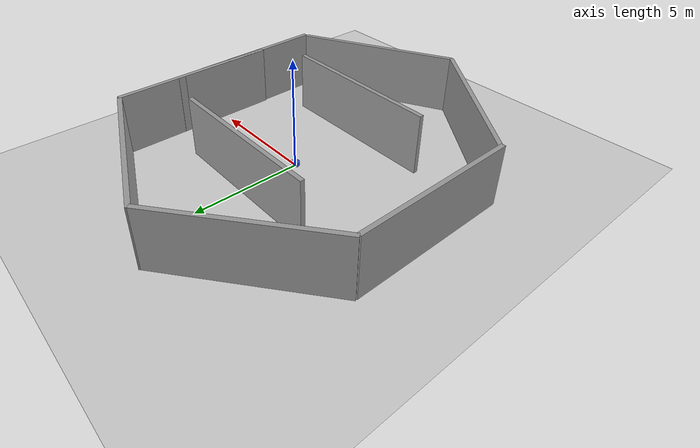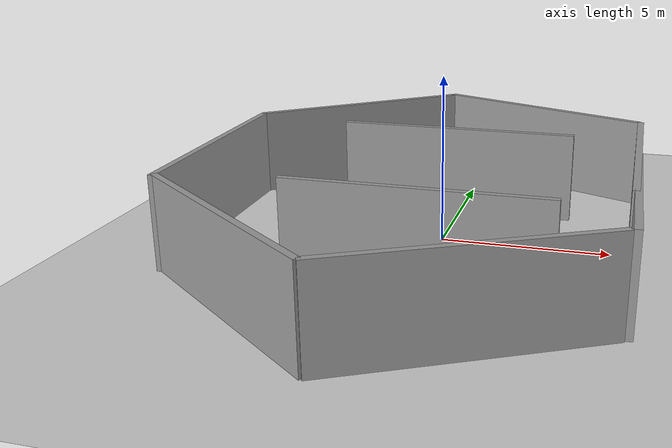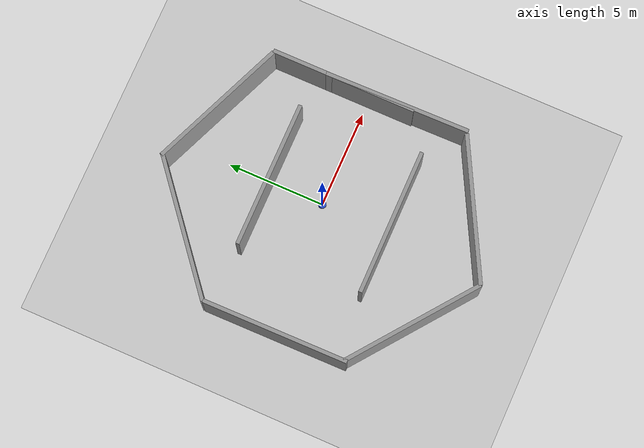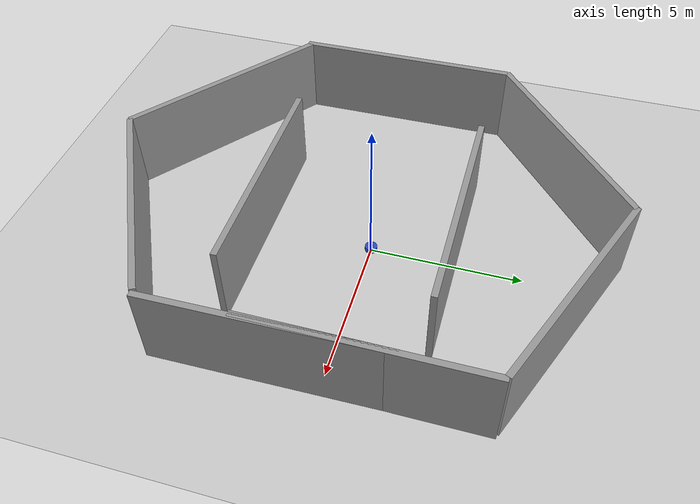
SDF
<sdf version="1.7">
 <world name="default">
  <light name="sun" type="directional">
   <pose>0 0 10 0 -0 0</pose>
   <diffuse>0.8 0.8 0.8 1</diffuse>
   <specular>0.2 0.2 0.2 1</specular>
   <attenuation>
    <range>1000</range>
    <constant>0.9</constant>
    <linear>0.01</linear>
    <quadratic>0.001</quadratic>
   </attenuation>
   <direction>-0.5 0.1 -0.9</direction>
   <spot><inner_angle>0</inner_angle><outer_angle>0</outer_angle><falloff>0</falloff></spot>
  </light>
  <model name="ground_plane">
   <static>1</static>
   <link name="link">
    <collision name="collision">
     <geometry><plane><normal>0 0 1</normal><size>100 100</size></plane></geometry>
     <surface><friction><ode><mu>100</mu><mu2>50</mu2></ode></friction></surface>
    </collision>
    <visual name="visual">
     <cast_shadows>0</cast_shadows>
     <geometry><plane><normal>0 0 1</normal><size>100 100</size></plane></geometry>
     <material>
      <script><uri>file://media/materials/scripts/gazebo.material</uri><name>Gazebo/Grey</name></script>
     </material>
    </visual>
   </link>
  </model>
  <gravity>0 0 -9.8</gravity>
  <magnetic_field>6e-06 2.3e-05 -4.2e-05</magnetic_field>
  <atmosphere type="adiabatic"/>
  <physics type="ode">
   <max_step_size>0.001</max_step_size>
   <real_time_factor>1</real_time_factor>
   <real_time_update_rate>1000</real_time_update_rate>
  </physics>
  <scene><ambient>0.4 0.4 0.4 1</ambient><background>0.7 0.7 0.7 1</background><shadows>1</shadows></scene>
  <spherical_coordinates>
   <surface_model>EARTH_WGS84</surface_model>
   <latitude_deg>0</latitude_deg>
   <longitude_deg>0</longitude_deg>
   <elevation>0</elevation>
   <heading_deg>0</heading_deg>
  </spherical_coordinates>
  <model name="robot">
   <link name="base_footprint">
    <inertial>
     <pose>0 0 0.110522 0 -0 0</pose>
     <mass>20.1</mass>
     <inertia><ixx>0.253764</ixx><ixy>0</ixy><ixz>0</ixz><iyy>0.253764</iyy><iyz>0</iyz><izz>0.41</izz></inertia>
    </inertial>
    <collision name="base_footprint_fixed_joint_lump__base_link_collision">
     <pose>0 0 0.11 0 -0 0</pose>
     <geometry><cylinder><length>0.16</length><radius>0.2</radius></cylinder></geometry>
    </collision>
    <collision name="base_footprint_fixed_joint_lump__laser_link_collision_1">
     <pose>0 0 0.215 0 -0 0</pose>
     <geometry><cylinder><length>0.06</length><radius>0.05</radius></cylinder></geometry>
    </collision>
    <visual name="base_footprint_visual"><geometry><box><size>0.001 0.001 0.001</size></box></geometry></visual>
    <visual name="base_footprint_fixed_joint_lump__base_link_visual_1">
     <pose>0 0 0.11 0 -0 0</pose>
     <geometry><cylinder><length>0.16</length><radius>0.2</radius></cylinder></geometry>
     <material>
      <script><name>Gazebo/Blue</name><uri>file://media/materials/scripts/gazebo.material</uri></script>
     </material>
    </visual>
    <visual name="base_footprint_fixed_joint_lump__laser_link_visual_2">
     <pose>0 0 0.215 0 -0 0</pose>
     <geometry><cylinder><length>0.05</length><radius>0.05</radius></cylinder></geometry>
     <material>
      <script><name>Gazebo/Black</name><uri>file://media/materials/scripts/gazebo.material</uri></script>
     </material>
    </visual>
    <sensor name="rplidar" type="ray">
     <visualize>1</visualize>
     <update_rate>10</update_rate>
     <ray>
      <scan>
       <horizontal>
        <samples>720</samples>
        <resolution>1</resolution>
        <min_angle>-3.14</min_angle>
        <max_angle>3.14</max_angle>
       </horizontal>
       <vertical><samples>1</samples><min_angle>0</min_angle><max_angle>0</max_angle></vertical>
      </scan>
      <range><min>0.1</min><max>20</max><resolution>0.01</resolution></range>
      <noise><type>gaussian</type><mean>0</mean><stddev>0.01</stddev></noise>
     </ray>
     <plugin name="gazebo_rplidar" filename="libgazebo_ros_laser.so">
      <topicName>scan</topicName>
      <frameName>laser_link</frameName>
      <robotNamespace>/</robotNamespace>
     </plugin>
     <pose>0 0 0.215 0 -0 0</pose>
    </sensor>
   </link>
   <joint name="back_caster_joint" type="revolute">
    <pose relative_to="base_footprint">0.18 0 0.015 0 -0 0</pose>
    <parent>base_footprint</parent>
    <child>back_caster_link</child>
    <axis>
     <xyz>0 1 0</xyz>
     <limit><lower>-1e+16</lower><upper>1e+16</upper></limit>
     <dynamics><spring_reference>0</spring_reference><spring_stiffness>0</spring_stiffness></dynamics>
    </axis>
   </joint>
   <link name="back_caster_link">
    <pose relative_to="back_caster_joint">0 0 0 0 -0 0</pose>
    <inertial>
     <mass>0.5</mass>
     <inertia><ixx>4.5e-05</ixx><ixy>0</ixy><ixz>0</ixz><iyy>4.5e-05</iyy><iyz>0</iyz><izz>4.5e-05</izz></inertia>
    </inertial>
    <collision name="back_caster_link_collision">
     <geometry><sphere><radius>0.015</radius></sphere></geometry>
    </collision>
    <visual name="back_caster_link_visual">
     <geometry><sphere><radius>0.015</radius></sphere></geometry>
     <material>
      <script><name>Gazebo/Black</name><uri>file://media/materials/scripts/gazebo.material</uri></script>
     </material>
    </visual>
   </link>
   <joint name="front_caster_joint" type="revolute">
    <pose relative_to="base_footprint">-0.18 0 0.015 0 -0 0</pose>
    <parent>base_footprint</parent>
    <child>front_caster_link</child>
    <axis>
     <xyz>0 1 0</xyz>
     <limit><lower>-1e+16</lower><upper>1e+16</upper></limit>
     <dynamics><spring_reference>0</spring_reference><spring_stiffness>0</spring_stiffness></dynamics>
    </axis>
   </joint>
   <link name="front_caster_link">
    <pose relative_to="front_caster_joint">0 0 0 0 -0 0</pose>
    <inertial>
     <mass>0.5</mass>
     <inertia><ixx>4.5e-05</ixx><ixy>0</ixy><ixz>0</ixz><iyy>4.5e-05</iyy><iyz>0</iyz><izz>4.5e-05</izz></inertia>
    </inertial>
    <collision name="front_caster_link_collision">
     <geometry><sphere><radius>0.015</radius></sphere></geometry>
    </collision>
    <visual name="front_caster_link_visual">
     <geometry><sphere><radius>0.015</radius></sphere></geometry>
     <material>
      <script><name>Gazebo/Black</name><uri>file://media/materials/scripts/gazebo.material</uri></script>
     </material>
    </visual>
   </link>
   <joint name="left_wheel_joint" type="revolute">
    <pose relative_to="base_footprint">0 0.19 0.06 0 -0 0</pose>
    <parent>base_footprint</parent>
    <child>left_wheel_link</child>
    <axis>
     <xyz>0 1 0</xyz>
     <limit><lower>-1e+16</lower><upper>1e+16</upper></limit>
     <dynamics><spring_reference>0</spring_reference><spring_stiffness>0</spring_stiffness></dynamics>
    </axis>
   </joint>
   <link name="left_wheel_link">
    <pose relative_to="left_wheel_joint">0 0 0 0 -0 0</pose>
    <inertial>
     <mass>2</mass>
     <inertia>
      <ixx>0.00190417</ixx>
      <ixy>0</ixy>
      <ixz>0</ixz>
      <iyy>0.00190417</iyy>
      <iyz>0</iyz>
      <izz>0.0036</izz>
     </inertia>
    </inertial>
    <collision name="left_wheel_link_collision">
     <pose>0 0 0 1.5708 -0 0</pose>
     <geometry><cylinder><length>0.025</length><radius>0.06</radius></cylinder></geometry>
    </collision>
    <visual name="left_wheel_link_visual">
     <pose>0 0 0 1.5708 -0 0</pose>
     <geometry><cylinder><length>0.025</length><radius>0.06</radius></cylinder></geometry>
     <material>
      <script><name>Gazebo/Gray</name><uri>file://media/materials/scripts/gazebo.material</uri></script>
     </material>
    </visual>
   </link>
   <joint name="right_wheel_joint" type="revolute">
    <pose relative_to="base_footprint">0 -0.19 0.06 0 -0 0</pose>
    <parent>base_footprint</parent>
    <child>right_wheel_link</child>
    <axis>
     <xyz>0 1 0</xyz>
     <limit><lower>-1e+16</lower><upper>1e+16</upper></limit>
     <dynamics><spring_reference>0</spring_reference><spring_stiffness>0</spring_stiffness></dynamics>
    </axis>
   </joint>
   <link name="right_wheel_link">
    <pose relative_to="right_wheel_joint">0 0 0 0 -0 0</pose>
    <inertial>
     <mass>2</mass>
     <inertia>
      <ixx>0.00190417</ixx>
      <ixy>0</ixy>
      <ixz>0</ixz>
      <iyy>0.00190417</iyy>
      <iyz>0</iyz>
      <izz>0.0036</izz>
     </inertia>
    </inertial>
    <collision name="right_wheel_link_collision">
     <pose>0 0 0 1.5708 -0 0</pose>
     <geometry><cylinder><length>0.025</length><radius>0.06</radius></cylinder></geometry>
    </collision>
    <visual name="right_wheel_link_visual">
     <pose>0 0 0 1.5708 -0 0</pose>
     <geometry><cylinder><length>0.025</length><radius>0.06</radius></cylinder></geometry>
     <material>
      <script><name>Gazebo/Gray</name><uri>file://media/materials/scripts/gazebo.material</uri></script>
     </material>
    </visual>
   </link>
   <static>0</static>
   <plugin name="differential_drive_controller" filename="libgazebo_ros_diff_drive.so">
    <rosDebugLevel>Debug</rosDebugLevel>
    <publishWheelTF>0</publishWheelTF>
    <robotNamespace>/</robotNamespace>
    <publishTf>1</publishTf>
    <publishWheelJointState>0</publishWheelJointState>
    <alwaysOn>1</alwaysOn>
    <updateRate>100.0</updateRate>
    <legacyMode>1</legacyMode>
    <leftJoint>left_wheel_joint</leftJoint>
    <rightJoint>right_wheel_joint</rightJoint>
    <wheelSeparation>0.38</wheelSeparation>
    <wheelDiameter>0.12</wheelDiameter>
    <broadcastTF>1</broadcastTF>
    <wheelTorque>30</wheelTorque>
    <wheelAcceleration>1.8</wheelAcceleration>
    <commandTopic>cmd_vel</commandTopic>
    <odometryFrame>/odom</odometryFrame>
    <odometryTopic>odom</odometryTopic>
    <robotBaseFrame>/base_footprint</robotBaseFrame>
   </plugin>
   <pose>-0.001904 0.002572 0 -0 -0 -9.2e-05</pose>
  </model>
  <model name="grey_wall">
   <static>1</static>
   <link name="link">
    <pose>0 0 1.4 0 -0 0</pose>
    <collision name="collision"><geometry><box><size>7.5 0.2 2.8</size></box></geometry></collision>
    <visual name="visual">
     <cast_shadows>0</cast_shadows>
     <geometry><box><size>7.5 0.2 2.8</size></box></geometry>
     <material>
      <script>
       <uri>model://grey_wall/materials/scripts</uri>
       <uri>model://grey_wall/materials/textures</uri>
       <name>vrc/grey_wall</name>
      </script>
     </material>
    </visual>
   </link>
   <pose>-0.170634 2.73819 0 0 -0 0</pose>
  </model>
  <model name="grey_wall_clone">
   <static>1</static>
   <link name="link">
    <pose>0 0 1.4 0 -0 0</pose>
    <collision name="collision"><geometry><box><size>7.5 0.2 2.8</size></box></geometry></collision>
    <visual name="visual">
     <cast_shadows>0</cast_shadows>
     <geometry><box><size>7.5 0.2 2.8</size></box></geometry>
     <material>
      <script>
       <uri>model://grey_wall/materials/scripts</uri>
       <uri>model://grey_wall/materials/textures</uri>
       <name>vrc/grey_wall</name>
      </script>
     </material>
    </visual>
   </link>
   <pose>0.041162 -3.60954 0 0 -0 0</pose>
  </model>
  <model name="grey_wall_clone_0">
   <static>1</static>
   <link name="link">
    <pose>0 0 1.4 0 -0 0</pose>
    <collision name="collision"><geometry><box><size>7.5 0.2 2.8</size></box></geometry></collision>
    <visual name="visual">
     <cast_shadows>0</cast_shadows>
     <geometry><box><size>7.5 0.2 2.8</size></box></geometry>
     <material>
      <script>
       <uri>model://grey_wall/materials/scripts</uri>
       <uri>model://grey_wall/materials/textures</uri>
       <name>vrc/grey_wall</name>
      </script>
     </material>
    </visual>
   </link>
   <pose>-7.06333 -0.625886 0 0 -0 1.57968</pose>
  </model>
  <model name="grey_wall_clone_1">
   <static>1</static>
   <link name="link">
    <pose>0 0 1.4 0 -0 0</pose>
    <collision name="collision"><geometry><box><size>7.5 0.2 2.8</size></box></geometry></collision>
    <visual name="visual">
     <cast_shadows>0</cast_shadows>
     <geometry><box><size>7.5 0.2 2.8</size></box></geometry>
     <material>
      <script>
       <uri>model://grey_wall/materials/scripts</uri>
       <uri>model://grey_wall/materials/textures</uri>
       <name>vrc/grey_wall</name>
      </script>
     </material>
    </visual>
   </link>
   <pose>-4.04957 -6.48493 0 0 0 -0.65023</pose>
  </model>
  <model name="grey_wall_clone_2">
   <static>1</static>
   <link name="link">
    <pose>0 0 1.4 0 -0 0</pose>
    <collision name="collision"><geometry><box><size>7.5 0.2 2.8</size></box></geometry></collision>
    <visual name="visual">
     <cast_shadows>0</cast_shadows>
     <geometry><box><size>7.5 0.2 2.8</size></box></geometry>
     <material>
      <script>
       <uri>model://grey_wall/materials/scripts</uri>
       <uri>model://grey_wall/materials/textures</uri>
       <name>vrc/grey_wall</name>
      </script>
     </material>
    </visual>
   </link>
   <pose>-4.23635 5.50059 0 0 -0 0.686917</pose>
  </model>
  <model name="grey_wall_clone_3">
   <static>1</static>
   <link name="link">
    <pose>0 0 1.4 0 -0 0</pose>
    <collision name="collision"><geometry><box><size>7.5 0.2 2.8</size></box></geometry></collision>
    <visual name="visual">
     <cast_shadows>0</cast_shadows>
     <geometry><box><size>7.5 0.2 2.8</size></box></geometry>
     <material>
      <script>
       <uri>model://grey_wall/materials/scripts</uri>
       <uri>model://grey_wall/materials/textures</uri>
       <name>vrc/grey_wall</name>
      </script>
     </material>
    </visual>
   </link>
   <pose>2.05997 6.47425 0 0 0 -0.394128</pose>
  </model>
  <model name="grey_wall_clone_4">
   <static>1</static>
   <link name="link">
    <pose>0 0 1.4 0 -0 0</pose>
    <collision name="collision"><geometry><box><size>7.5 0.2 2.8</size></box></geometry></collision>
    <visual name="visual">
     <cast_shadows>0</cast_shadows>
     <geometry><box><size>7.5 0.2 2.8</size></box></geometry>
     <material>
      <script>
       <uri>model://grey_wall/materials/scripts</uri>
       <uri>model://grey_wall/materials/textures</uri>
       <name>vrc/grey_wall</name>
      </script>
     </material>
    </visual>
   </link>
   <pose>5.57699 1.31704 0 0 0 -1.5713</pose>
  </model>
  <model name="grey_wall_clone_5">
   <static>1</static>
   <link name="link">
    <pose>0 0 1.4 0 -0 0</pose>
    <collision name="collision"><geometry><box><size>7.5 0.2 2.8</size></box></geometry></collision>
    <visual name="visual">
     <cast_shadows>0</cast_shadows>
     <geometry><box><size>7.5 0.2 2.8</size></box></geometry>
     <material>
      <script>
       <uri>model://grey_wall/materials/scripts</uri>
       <uri>model://grey_wall/materials/textures</uri>
       <name>vrc/grey_wall</name>
      </script>
     </material>
    </visual>
   </link>
   <pose>5.62353 -1.51274 0 0 -0 1.58437</pose>
  </model>
  <model name="grey_wall_clone_6">
   <static>1</static>
   <link name="link">
    <pose>0 0 1.4 0 -0 0</pose>
    <collision name="collision"><geometry><box><size>7.5 0.2 2.8</size></box></geometry></collision>
    <visual name="visual">
     <cast_shadows>0</cast_shadows>
     <geometry><box><size>7.5 0.2 2.8</size></box></geometry>
     <material>
      <script>
       <uri>model://grey_wall/materials/scripts</uri>
       <uri>model://grey_wall/materials/textures</uri>
       <name>vrc/grey_wall</name>
      </script>
     </material>
    </visual>
   </link>
   <pose>2.22039 -6.9924 0 0 -0 0.487729</pose>
  </model>
 </world>
</sdf>
